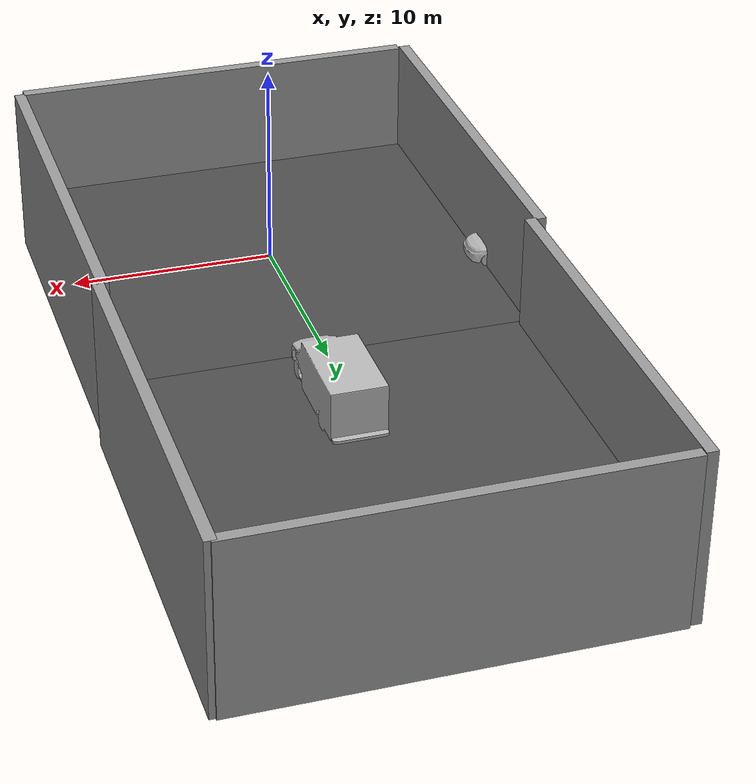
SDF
<?xml version='1.0'?>
<sdf version='1.6'>
  <model name='DQN_world_4'>
    <link name='link'>
      <pose frame=''>0 0 0 0 -0 0</pose>
      <self_collide>0</self_collide>
      <kinematic>0</kinematic>
      <visual name='visual'>
        <cast_shadows>0</cast_shadows>
        <geometry>
          <box>
            <size>20 20 0.1</size>
          </box>
        </geometry>
        <material>
          <script>
            <uri>model://asphalt_plane/materials/scripts</uri>
            <uri>model://asphalt_plane/materials/textures</uri>
            <name>vrc/asphalt</name>
          </script>
          <ambient>0.5 0.5 0.5 1</ambient>
          <diffuse>0.5 0.5 0.5 1</diffuse>
          <specular>0.2 0.2 0.2 1</specular>
          <emissive>0 0 0 1</emissive>
        </material>
        <pose frame=''>0 0 0 0 -0 0</pose>
        <transparency>0</transparency>
      </visual>
      <collision name='collision'>
        <laser_retro>0</laser_retro>
        <max_contacts>10</max_contacts>
        <pose frame=''>0 0 0 0 -0 0</pose>
        <geometry>
          <box>
            <size>20 20 0.1</size>
          </box>
        </geometry>
        <surface>
          <friction>
            <ode>
              <mu>1</mu>
              <mu2>1</mu2>
              <fdir1>0 0 0</fdir1>
              <slip1>0</slip1>
              <slip2>0</slip2>
            </ode>
            <torsional>
              <coefficient>1</coefficient>
              <patch_radius>0</patch_radius>
              <surface_radius>0</surface_radius>
              <use_patch_radius>1</use_patch_radius>
              <ode>
                <slip>0</slip>
              </ode>
            </torsional>
          </friction>
          <bounce>
            <restitution_coefficient>0</restitution_coefficient>
            <threshold>1e+06</threshold>
          </bounce>
          <contact>
            <collide_without_contact>0</collide_without_contact>
            <collide_without_contact_bitmask>1</collide_without_contact_bitmask>
            <collide_bitmask>1</collide_bitmask>
            <ode>
              <soft_cfm>0</soft_cfm>
              <soft_erp>0.2</soft_erp>
              <kp>1e+13</kp>
              <kd>1</kd>
              <max_vel>0.01</max_vel>
              <min_depth>0</min_depth>
            </ode>
            <bullet>
              <split_impulse>1</split_impulse>
              <split_impulse_penetration_threshold>-0.01</split_impulse_penetration_threshold>
              <soft_cfm>0</soft_cfm>
              <soft_erp>0.2</soft_erp>
              <kp>1e+13</kp>
              <kd>1</kd>
            </bullet>
          </contact>
        </surface>
      </collision>
    </link>
    <link name='link_clone'>
      <pose frame=''>0.3671 19.6373 0 0 -0 0</pose>
      <self_collide>0</self_collide>
      <kinematic>0</kinematic>
      <visual name='visual'>
        <cast_shadows>0</cast_shadows>
        <geometry>
          <box>
            <size>20 20 0.1</size>
          </box>
        </geometry>
        <material>
          <script>
            <uri>model://asphalt_plane/materials/scripts</uri>
            <uri>model://asphalt_plane/materials/textures</uri>
            <name>vrc/asphalt</name>
          </script>
          <ambient>0.5 0.5 0.5 1</ambient>
          <diffuse>0.5 0.5 0.5 1</diffuse>
          <specular>0.2 0.2 0.2 1</specular>
          <emissive>0 0 0 1</emissive>
          <shader type='pixel'/>
        </material>
        <pose frame=''>0 0 0 0 -0 0</pose>
        <transparency>0</transparency>
      </visual>
      <collision name='collision'>
        <laser_retro>0</laser_retro>
        <max_contacts>10</max_contacts>
        <pose frame=''>0 0 0 0 -0 0</pose>
        <geometry>
          <box>
            <size>20 20 0.1</size>
          </box>
        </geometry>
        <surface>
          <friction>
            <ode>
              <mu>1</mu>
              <mu2>1</mu2>
              <fdir1>0 0 0</fdir1>
              <slip1>0</slip1>
              <slip2>0</slip2>
            </ode>
            <torsional>
              <coefficient>1</coefficient>
              <patch_radius>0</patch_radius>
              <surface_radius>0</surface_radius>
              <use_patch_radius>1</use_patch_radius>
              <ode>
                <slip>0</slip>
              </ode>
            </torsional>
          </friction>
          <bounce>
            <restitution_coefficient>0</restitution_coefficient>
            <threshold>1e+06</threshold>
          </bounce>
          <contact>
            <collide_without_contact>0</collide_without_contact>
            <collide_without_contact_bitmask>1</collide_without_contact_bitmask>
            <collide_bitmask>1</collide_bitmask>
            <ode>
              <soft_cfm>0</soft_cfm>
              <soft_erp>0.2</soft_erp>
              <kp>1e+13</kp>
              <kd>1</kd>
              <max_vel>0.01</max_vel>
              <min_depth>0</min_depth>
            </ode>
            <bullet>
              <split_impulse>1</split_impulse>
              <split_impulse_penetration_threshold>-0.01</split_impulse_penetration_threshold>
              <soft_cfm>0</soft_cfm>
              <soft_erp>0.2</soft_erp>
              <kp>1e+13</kp>
              <kd>1</kd>
            </bullet>
          </contact>
        </surface>
      </collision>
    </link>
    <model name='ambulance'>
      <static>1</static>
      <link name='link'>
        <collision name='collision'>
          <geometry>
            <mesh>
              <scale>0.0254 0.0254 0.0254</scale>
              <uri>model://ambulance/meshes/ambulance.obj</uri>
            </mesh>
          </geometry>
        </collision>
        <visual name='visual'>
          <geometry>
            <mesh>
              <scale>0.0254 0.0254 0.0254</scale>
              <uri>model://ambulance/meshes/ambulance.obj</uri>
            </mesh>
          </geometry>
        </visual>
      </link>
      <pose frame=''>0.806776 14.17 0 0 -0 0</pose>
    </model>
    <model name='grey_wall_mw_clone'>
      <link name='link'>
        <pose frame=''>-8.81665 -2.69351 1.4 0 -0 0</pose>
        <inertial>
          <inertia>
            <ixx>nan</ixx>
            <ixy>0</ixy>
            <ixz>0</ixz>
            <iyy>nan</iyy>
            <iyz>0</iyz>
            <izz>nan</izz>
          </inertia>
          <mass>0</mass>
          <pose frame=''>0 0 0 0 -0 0</pose>
        </inertial>
        <self_collide>0</self_collide>
        <kinematic>0</kinematic>
        <visual name='visual'>
          <cast_shadows>0</cast_shadows>
          <geometry>
            <box>
              <size>20.2056 0.556506 8.63552</size>
            </box>
          </geometry>
          <material>
            <script>
              <uri>model://grey_wall/materials/scripts</uri>
              <uri>model://grey_wall/materials/textures</uri>
              <name>vrc/grey_wall</name>
            </script>
            <ambient>1 1 1 1</ambient>
            <diffuse>1 1 1 1</diffuse>
            <specular>0 0 0 1</specular>
            <emissive>0 0 0 1</emissive>
          </material>
          <pose frame=''>0 0 0 0 -0 0</pose>
          <transparency>0</transparency>
        </visual>
        <collision name='collision'>
          <laser_retro>0</laser_retro>
          <max_contacts>10</max_contacts>
          <pose frame=''>0 0 0 0 -0 0</pose>
          <geometry>
            <box>
              <size>20.2056 0.556506 8.63552</size>
            </box>
          </geometry>
          <surface>
            <friction>
              <ode>
                <mu>1</mu>
                <mu2>1</mu2>
                <fdir1>0 0 0</fdir1>
                <slip1>0</slip1>
                <slip2>0</slip2>
              </ode>
              <torsional>
                <coefficient>1</coefficient>
                <patch_radius>0</patch_radius>
                <surface_radius>0</surface_radius>
                <use_patch_radius>1</use_patch_radius>
                <ode>
                  <slip>0</slip>
                </ode>
              </torsional>
            </friction>
            <bounce>
              <restitution_coefficient>0</restitution_coefficient>
              <threshold>1e+06</threshold>
            </bounce>
            <contact>
              <collide_without_contact>0</collide_without_contact>
              <collide_without_contact_bitmask>1</collide_without_contact_bitmask>
              <collide_bitmask>1</collide_bitmask>
              <ode>
                <soft_cfm>0</soft_cfm>
                <soft_erp>0.2</soft_erp>
                <kp>1e+13</kp>
                <kd>1</kd>
                <max_vel>0.01</max_vel>
                <min_depth>0</min_depth>
              </ode>
              <bullet>
                <split_impulse>1</split_impulse>
                <split_impulse_penetration_threshold>-0.01</split_impulse_penetration_threshold>
                <soft_cfm>0</soft_cfm>
                <soft_erp>0.2</soft_erp>
                <kp>1e+13</kp>
                <kd>1</kd>
              </bullet>
            </contact>
          </surface>
        </collision>
        <gravity>1</gravity>
      </link>
      <static>1</static>
      <allow_auto_disable>1</allow_auto_disable>
      <pose frame=''>8.94987 -7.52388 0 0 -0 0</pose>
    </model>
    <model name='grey_wall_mw_clone_1'>
      <link name='link'>
        <pose frame=''>-8.81665 -2.69351 1.4 0 -0 0</pose>
        <inertial>
          <inertia>
            <ixx>nan</ixx>
            <ixy>0</ixy>
            <ixz>0</ixz>
            <iyy>nan</iyy>
            <iyz>0</iyz>
            <izz>nan</izz>
          </inertia>
          <mass>0</mass>
          <pose frame=''>0 0 0 0 -0 0</pose>
        </inertial>
        <self_collide>0</self_collide>
        <kinematic>0</kinematic>
        <visual name='visual'>
          <cast_shadows>0</cast_shadows>
          <geometry>
            <box>
              <size>20.2056 0.556506 8.63552</size>
            </box>
          </geometry>
          <material>
            <script>
              <uri>model://grey_wall/materials/scripts</uri>
              <uri>model://grey_wall/materials/textures</uri>
              <name>vrc/grey_wall</name>
            </script>
            <ambient>1 1 1 1</ambient>
            <diffuse>1 1 1 1</diffuse>
            <specular>0 0 0 1</specular>
            <emissive>0 0 0 1</emissive>
          </material>
          <pose frame=''>0 0 0 0 -0 0</pose>
          <transparency>0</transparency>
        </visual>
        <collision name='collision'>
          <laser_retro>0</laser_retro>
          <max_contacts>10</max_contacts>
          <pose frame=''>0 0 0 0 -0 0</pose>
          <geometry>
            <box>
              <size>20.2056 0.556506 8.63552</size>
            </box>
          </geometry>
          <surface>
            <friction>
              <ode>
                <mu>1</mu>
                <mu2>1</mu2>
                <fdir1>0 0 0</fdir1>
                <slip1>0</slip1>
                <slip2>0</slip2>
              </ode>
              <torsional>
                <coefficient>1</coefficient>
                <patch_radius>0</patch_radius>
                <surface_radius>0</surface_radius>
                <use_patch_radius>1</use_patch_radius>
                <ode>
                  <slip>0</slip>
                </ode>
              </torsional>
            </friction>
            <bounce>
              <restitution_coefficient>0</restitution_coefficient>
              <threshold>1e+06</threshold>
            </bounce>
            <contact>
              <collide_without_contact>0</collide_without_contact>
              <collide_without_contact_bitmask>1</collide_without_contact_bitmask>
              <collide_bitmask>1</collide_bitmask>
              <ode>
                <soft_cfm>0</soft_cfm>
                <soft_erp>0.2</soft_erp>
                <kp>1e+13</kp>
                <kd>1</kd>
                <max_vel>0.01</max_vel>
                <min_depth>0</min_depth>
              </ode>
              <bullet>
                <split_impulse>1</split_impulse>
                <split_impulse_penetration_threshold>-0.01</split_impulse_penetration_threshold>
                <soft_cfm>0</soft_cfm>
                <soft_erp>0.2</soft_erp>
                <kp>1e+13</kp>
                <kd>1</kd>
              </bullet>
            </contact>
          </surface>
        </collision>
        <gravity>1</gravity>
      </link>
      <static>1</static>
      <allow_auto_disable>1</allow_auto_disable>
      <pose frame=''>13.1547 -8.80175 0 0 0 -1.57043</pose>
    </model>
    <model name='grey_wall_mw_clone_1_clone'>
      <link name='link'>
        <pose frame=''>-8.81665 -2.69351 1.4 0 -0 0</pose>
        <inertial>
          <inertia>
            <ixx>nan</ixx>
            <ixy>0</ixy>
            <ixz>0</ixz>
            <iyy>nan</iyy>
            <iyz>0</iyz>
            <izz>nan</izz>
          </inertia>
          <mass>0</mass>
          <pose frame=''>0 0 0 0 -0 0</pose>
        </inertial>
        <self_collide>0</self_collide>
        <kinematic>0</kinematic>
        <visual name='visual'>
          <cast_shadows>0</cast_shadows>
          <geometry>
            <box>
              <size>20.2056 0.556506 8.63552</size>
            </box>
          </geometry>
          <material>
            <script>
              <uri>model://grey_wall/materials/scripts</uri>
              <uri>model://grey_wall/materials/textures</uri>
              <name>vrc/grey_wall</name>
            </script>
            <ambient>1 1 1 1</ambient>
            <diffuse>1 1 1 1</diffuse>
            <specular>0 0 0 1</specular>
            <emissive>0 0 0 1</emissive>
          </material>
          <pose frame=''>0 0 0 0 -0 0</pose>
          <transparency>0</transparency>
        </visual>
        <collision name='collision'>
          <laser_retro>0</laser_retro>
          <max_contacts>10</max_contacts>
          <pose frame=''>0 0 0 0 -0 0</pose>
          <geometry>
            <box>
              <size>20.2056 0.556506 8.63552</size>
            </box>
          </geometry>
          <surface>
            <friction>
              <ode>
                <mu>1</mu>
                <mu2>1</mu2>
                <fdir1>0 0 0</fdir1>
                <slip1>0</slip1>
                <slip2>0</slip2>
              </ode>
              <torsional>
                <coefficient>1</coefficient>
                <patch_radius>0</patch_radius>
                <surface_radius>0</surface_radius>
                <use_patch_radius>1</use_patch_radius>
                <ode>
                  <slip>0</slip>
                </ode>
              </torsional>
            </friction>
            <bounce>
              <restitution_coefficient>0</restitution_coefficient>
              <threshold>1e+06</threshold>
            </bounce>
            <contact>
              <collide_without_contact>0</collide_without_contact>
              <collide_without_contact_bitmask>1</collide_without_contact_bitmask>
              <collide_bitmask>1</collide_bitmask>
              <ode>
                <soft_cfm>0</soft_cfm>
                <soft_erp>0.2</soft_erp>
                <kp>1e+13</kp>
                <kd>1</kd>
                <max_vel>0.01</max_vel>
                <min_depth>0</min_depth>
              </ode>
              <bullet>
                <split_impulse>1</split_impulse>
                <split_impulse_penetration_threshold>-0.01</split_impulse_penetration_threshold>
                <soft_cfm>0</soft_cfm>
                <soft_erp>0.2</soft_erp>
                <kp>1e+13</kp>
                <kd>1</kd>
              </bullet>
            </contact>
          </surface>
        </collision>
        <gravity>1</gravity>
      </link>
      <static>1</static>
      <allow_auto_disable>1</allow_auto_disable>
      <pose frame=''>13.3671 11.1932 0 0 0 -1.57043</pose>
    </model>
    <model name='grey_wall_mw_clone_1_clone_clone'>
      <link name='link'>
        <pose frame=''>-8.81665 -2.69351 1.4 0 -0 0</pose>
        <inertial>
          <inertia>
            <ixx>nan</ixx>
            <ixy>0</ixy>
            <ixz>0</ixz>
            <iyy>nan</iyy>
            <iyz>0</iyz>
            <izz>nan</izz>
          </inertia>
          <mass>0</mass>
          <pose frame=''>0 0 0 0 -0 0</pose>
        </inertial>
        <self_collide>0</self_collide>
        <kinematic>0</kinematic>
        <visual name='visual'>
          <cast_shadows>0</cast_shadows>
          <geometry>
            <box>
              <size>20.2056 0.556506 8.63552</size>
            </box>
          </geometry>
          <material>
            <script>
              <uri>model://grey_wall/materials/scripts</uri>
              <uri>model://grey_wall/materials/textures</uri>
              <name>vrc/grey_wall</name>
            </script>
            <ambient>1 1 1 1</ambient>
            <diffuse>1 1 1 1</diffuse>
            <specular>0 0 0 1</specular>
            <emissive>0 0 0 1</emissive>
          </material>
          <pose frame=''>0 0 0 0 -0 0</pose>
          <transparency>0</transparency>
        </visual>
        <collision name='collision'>
          <laser_retro>0</laser_retro>
          <max_contacts>10</max_contacts>
          <pose frame=''>0 0 0 0 -0 0</pose>
          <geometry>
            <box>
              <size>20.2056 0.556506 8.63552</size>
            </box>
          </geometry>
          <surface>
            <friction>
              <ode>
                <mu>1</mu>
                <mu2>1</mu2>
                <fdir1>0 0 0</fdir1>
                <slip1>0</slip1>
                <slip2>0</slip2>
              </ode>
              <torsional>
                <coefficient>1</coefficient>
                <patch_radius>0</patch_radius>
                <surface_radius>0</surface_radius>
                <use_patch_radius>1</use_patch_radius>
                <ode>
                  <slip>0</slip>
                </ode>
              </torsional>
            </friction>
            <bounce>
              <restitution_coefficient>0</restitution_coefficient>
              <threshold>1e+06</threshold>
            </bounce>
            <contact>
              <collide_without_contact>0</collide_without_contact>
              <collide_without_contact_bitmask>1</collide_without_contact_bitmask>
              <collide_bitmask>1</collide_bitmask>
              <ode>
                <soft_cfm>0</soft_cfm>
                <soft_erp>0.2</soft_erp>
                <kp>1e+13</kp>
                <kd>1</kd>
                <max_vel>0.01</max_vel>
                <min_depth>0</min_depth>
              </ode>
              <bullet>
                <split_impulse>1</split_impulse>
                <split_impulse_penetration_threshold>-0.01</split_impulse_penetration_threshold>
                <soft_cfm>0</soft_cfm>
                <soft_erp>0.2</soft_erp>
                <kp>1e+13</kp>
                <kd>1</kd>
              </bullet>
            </contact>
          </surface>
        </collision>
        <gravity>1</gravity>
      </link>
      <static>1</static>
      <allow_auto_disable>1</allow_auto_disable>
      <pose frame=''>-7.16918 11.1435 0 0 0 -1.57043</pose>
    </model>
    <model name='grey_wall_mw_clone_1_clone_clone_0'>
      <link name='link'>
        <pose frame=''>-8.81665 -2.69351 1.4 0 -0 0</pose>
        <inertial>
          <inertia>
            <ixx>nan</ixx>
            <ixy>0</ixy>
            <ixz>0</ixz>
            <iyy>nan</iyy>
            <iyz>0</iyz>
            <izz>nan</izz>
          </inertia>
          <mass>0</mass>
          <pose frame=''>0 0 0 0 -0 0</pose>
        </inertial>
        <self_collide>0</self_collide>
        <kinematic>0</kinematic>
        <visual name='visual'>
          <cast_shadows>0</cast_shadows>
          <geometry>
            <box>
              <size>20.2056 0.556506 8.63552</size>
            </box>
          </geometry>
          <material>
            <script>
              <uri>model://grey_wall/materials/scripts</uri>
              <uri>model://grey_wall/materials/textures</uri>
              <name>vrc/grey_wall</name>
            </script>
            <ambient>1 1 1 1</ambient>
            <diffuse>1 1 1 1</diffuse>
            <specular>0 0 0 1</specular>
            <emissive>0 0 0 1</emissive>
          </material>
          <pose frame=''>0 0 0 0 -0 0</pose>
          <transparency>0</transparency>
        </visual>
        <collision name='collision'>
          <laser_retro>0</laser_retro>
          <max_contacts>10</max_contacts>
          <pose frame=''>0 0 0 0 -0 0</pose>
          <geometry>
            <box>
              <size>20.2056 0.556506 8.63552</size>
            </box>
          </geometry>
          <surface>
            <friction>
              <ode>
                <mu>1</mu>
                <mu2>1</mu2>
                <fdir1>0 0 0</fdir1>
                <slip1>0</slip1>
                <slip2>0</slip2>
              </ode>
              <torsional>
                <coefficient>1</coefficient>
                <patch_radius>0</patch_radius>
                <surface_radius>0</surface_radius>
                <use_patch_radius>1</use_patch_radius>
                <ode>
                  <slip>0</slip>
                </ode>
              </torsional>
            </friction>
            <bounce>
              <restitution_coefficient>0</restitution_coefficient>
              <threshold>1e+06</threshold>
            </bounce>
            <contact>
              <collide_without_contact>0</collide_without_contact>
              <collide_without_contact_bitmask>1</collide_without_contact_bitmask>
              <collide_bitmask>1</collide_bitmask>
              <ode>
                <soft_cfm>0</soft_cfm>
                <soft_erp>0.2</soft_erp>
                <kp>1e+13</kp>
                <kd>1</kd>
                <max_vel>0.01</max_vel>
                <min_depth>0</min_depth>
              </ode>
              <bullet>
                <split_impulse>1</split_impulse>
                <split_impulse_penetration_threshold>-0.01</split_impulse_penetration_threshold>
                <soft_cfm>0</soft_cfm>
                <soft_erp>0.2</soft_erp>
                <kp>1e+13</kp>
                <kd>1</kd>
              </bullet>
            </contact>
          </surface>
        </collision>
        <gravity>1</gravity>
      </link>
      <static>1</static>
      <allow_auto_disable>1</allow_auto_disable>
      <pose frame=''>-7.6329 -8.8994 0 0 0 -1.57043</pose>
    </model>
    <model name='grey_wall_mw_clone_clone'>
      <link name='link'>
        <pose frame=''>-8.81665 -2.69351 1.4 0 -0 0</pose>
        <inertial>
          <inertia>
            <ixx>nan</ixx>
            <ixy>0</ixy>
            <ixz>0</ixz>
            <iyy>nan</iyy>
            <iyz>0</iyz>
            <izz>nan</izz>
          </inertia>
          <mass>0</mass>
          <pose frame=''>0 0 0 0 -0 0</pose>
        </inertial>
        <self_collide>0</self_collide>
        <kinematic>0</kinematic>
        <visual name='visual'>
          <cast_shadows>0</cast_shadows>
          <geometry>
            <box>
              <size>20.2056 0.556506 8.63552</size>
            </box>
          </geometry>
          <material>
            <script>
              <uri>model://grey_wall/materials/scripts</uri>
              <uri>model://grey_wall/materials/textures</uri>
              <name>vrc/grey_wall</name>
            </script>
            <ambient>1 1 1 1</ambient>
            <diffuse>1 1 1 1</diffuse>
            <specular>0 0 0 1</specular>
            <emissive>0 0 0 1</emissive>
          </material>
          <pose frame=''>0 0 0 0 -0 0</pose>
          <transparency>0</transparency>
        </visual>
        <collision name='collision'>
          <laser_retro>0</laser_retro>
          <max_contacts>10</max_contacts>
          <pose frame=''>0 0 0 0 -0 0</pose>
          <geometry>
            <box>
              <size>20.2056 0.556506 8.63552</size>
            </box>
          </geometry>
          <surface>
            <friction>
              <ode>
                <mu>1</mu>
                <mu2>1</mu2>
                <fdir1>0 0 0</fdir1>
                <slip1>0</slip1>
                <slip2>0</slip2>
              </ode>
              <torsional>
                <coefficient>1</coefficient>
                <patch_radius>0</patch_radius>
                <surface_radius>0</surface_radius>
                <use_patch_radius>1</use_patch_radius>
                <ode>
                  <slip>0</slip>
                </ode>
              </torsional>
            </friction>
            <bounce>
              <restitution_coefficient>0</restitution_coefficient>
              <threshold>1e+06</threshold>
            </bounce>
            <contact>
              <collide_without_contact>0</collide_without_contact>
              <collide_without_contact_bitmask>1</collide_without_contact_bitmask>
              <collide_bitmask>1</collide_bitmask>
              <ode>
                <soft_cfm>0</soft_cfm>
                <soft_erp>0.2</soft_erp>
                <kp>1e+13</kp>
                <kd>1</kd>
                <max_vel>0.01</max_vel>
                <min_depth>0</min_depth>
              </ode>
              <bullet>
                <split_impulse>1</split_impulse>
                <split_impulse_penetration_threshold>-0.01</split_impulse_penetration_threshold>
                <soft_cfm>0</soft_cfm>
                <soft_erp>0.2</soft_erp>
                <kp>1e+13</kp>
                <kd>1</kd>
              </bullet>
            </contact>
          </surface>
        </collision>
        <gravity>1</gravity>
      </link>
      <static>1</static>
      <allow_auto_disable>1</allow_auto_disable>
      <pose frame=''>9.3671 32.6373 0 0 -0 0</pose>
    </model>
    <model name='hatchback'>
      <static>1</static>
      <link name='link'>
        <collision name='collision'>
          <pose frame=''>0 0 0 0 -0 1.5708</pose>
          <geometry>
            <mesh>
              <scale>0.0254 0.0254 0.0254</scale>
              <uri>model://hatchback/meshes/hatchback.obj</uri>
            </mesh>
          </geometry>
        </collision>
        <visual name='visual'>
          <pose frame=''>0 0 0 0 -0 1.5708</pose>
          <geometry>
            <mesh>
              <scale>0.0254 0.0254 0.0254</scale>
              <uri>model://hatchback/meshes/hatchback.obj</uri>
            </mesh>
          </geometry>
        </visual>
      </link>
      <pose frame=''>-11.6329 3.10985 0 0 -0 0</pose>
    </model>
    <static>1</static>
    <allow_auto_disable>1</allow_auto_disable>
  </model>
</sdf>
